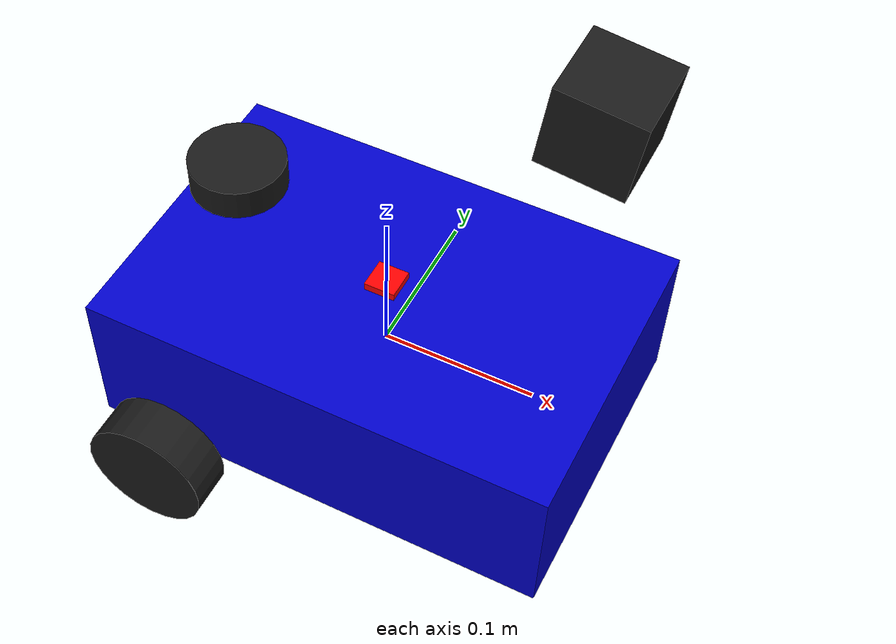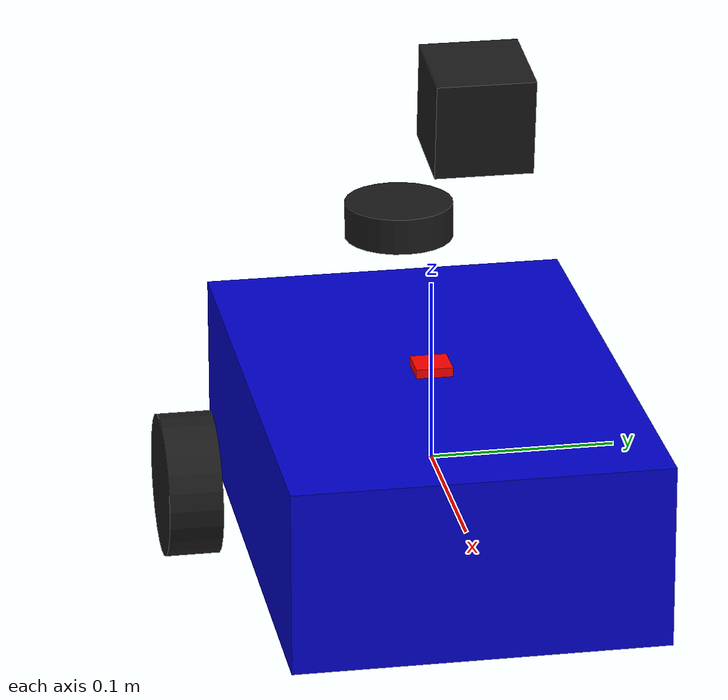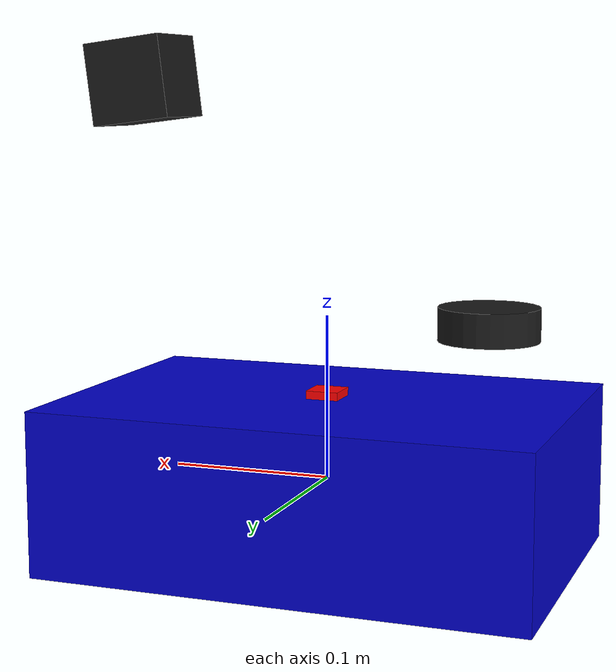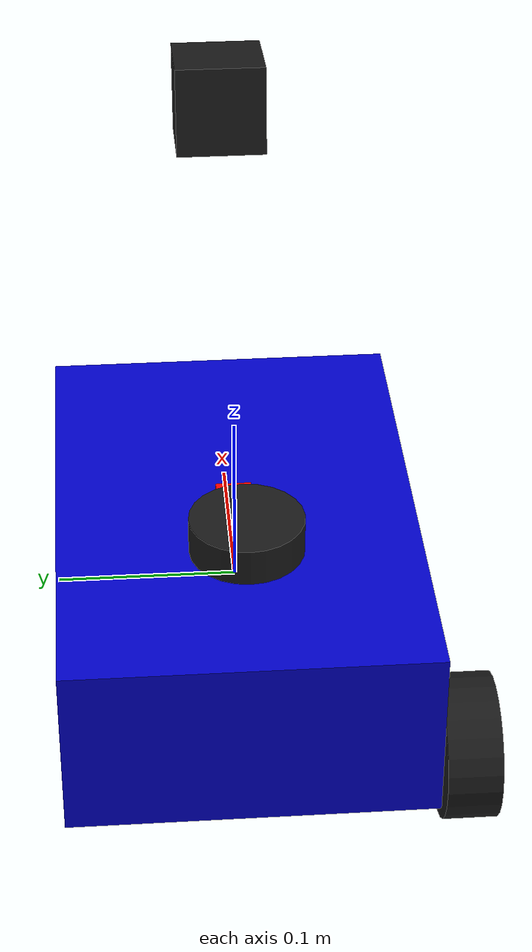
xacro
<?xml version="1.0"?>
<robot xmlns:xacro="http://www.ros.org/wiki/xacro" name="rover1">

  <!-- Dimensions (Approximate based on 1/10 scale crawler) -->
  <xacro:property name="chassis_length" value="0.3"/>
  <xacro:property name="chassis_width" value="0.2"/>
  <xacro:property name="chassis_height" value="0.1"/>
  <xacro:property name="wheel_radius" value="0.04"/>
  <xacro:property name="wheel_width" value="0.03"/>

  <!-- Base Link (Chassis Center) -->
  <link name="base_link">
    <visual>
      <geometry>
        <box size="${chassis_length} ${chassis_width} ${chassis_height}"/>
      </geometry>
      <material name="blue">
        <color rgba="0.0 0.0 0.8 1.0"/>
      </material>
    </visual>
    <collision>
      <geometry>
        <box size="${chassis_length} ${chassis_width} ${chassis_height}"/>
      </geometry>
    </collision>
  </link>

  <!-- Footprint (Projected on ground) -->
  <link name="base_footprint"/>
  <joint name="base_footprint_joint" type="fixed">
    <parent link="base_link"/>
    <child link="base_footprint"/>
    <origin xyz="0 0 -${chassis_height/2 + wheel_radius}" rpy="0 0 0"/>
  </joint>

  <!-- IMU Link -->
  <link name="imu_link">
    <visual>
      <geometry>
        <box size="0.02 0.02 0.01"/>
      </geometry>
      <material name="red">
        <color rgba="1.0 0.0 0.0 1.0"/>
      </material>
    </visual>
  </link>

  <joint name="imu_joint" type="fixed">
    <parent link="base_link"/>
    <child link="imu_link"/>
    <origin xyz="0 0 0.05" rpy="0 0 0"/>
  </joint>

  <!-- GPS Link -->
  <link name="gps_link">
    <visual>
      <geometry>
        <cylinder length="0.02" radius="0.03"/>
      </geometry>
      <material name="black">
        <color rgba="0.1 0.1 0.1 1.0"/>
      </material>
    </visual>
  </link>

  <joint name="gps_joint" type="fixed">
    <parent link="base_link"/>
    <child link="gps_link"/>
    <origin xyz="-0.1 0 0.1" rpy="0 0 0"/>
  </joint>

  <!-- Wheels (Visualization Only) -->
  <xacro:macro name="wheel" params="prefix x y">
    <link name="${prefix}_wheel">
      <visual>
        <origin xyz="0 0 0" rpy="${pi/2} 0 0"/>
        <geometry>
          <cylinder length="${wheel_width}" radius="${wheel_radius}"/>
        </geometry>
        <material name="black"/>
      </visual>
    </link>
    <joint name="${prefix}_wheel_joint" type="fixed">
      <parent link="base_link"/>
      <child link="${prefix}_wheel"/>
      <origin xyz="${x} ${y} -0.05" rpy="0 0 0"/>
    </joint>
  </xacro:macro>

  <xacro:wheel prefix="rear_right" x="-0.1" y="-0.12"/>

  <!-- Camera Link (Nuwa-HP60C) -->
  <link name="camera_link">
    <visual>
      <geometry>
        <box size="0.05 0.05 0.05"/>
      </geometry>
      <material name="black"/>
    </visual>
  </link>

  <joint name="camera_joint" type="fixed">
    <parent link="base_link"/>
    <child link="camera_link"/>
    <!-- Position: Near front (0.12m), Height: 33cm from ground (24cm from center) -->
    <!-- Orientation: 7 degrees downward pitch (0.122 radians) -->
    <origin xyz="0.12 0 0.24" rpy="0 0.122 0"/>
  </joint>

  <!-- Optical frame for standard vision processing (Z forward, X right, Y down) -->
  <link name="camera_optical_frame"/>
  <joint name="camera_optical_joint" type="fixed">
    <parent link="camera_link"/>
    <child link="camera_optical_frame"/>
    <origin xyz="0 0 0" rpy="-${pi/2} 0 -${pi/2}"/>
  </joint>

</robot>
